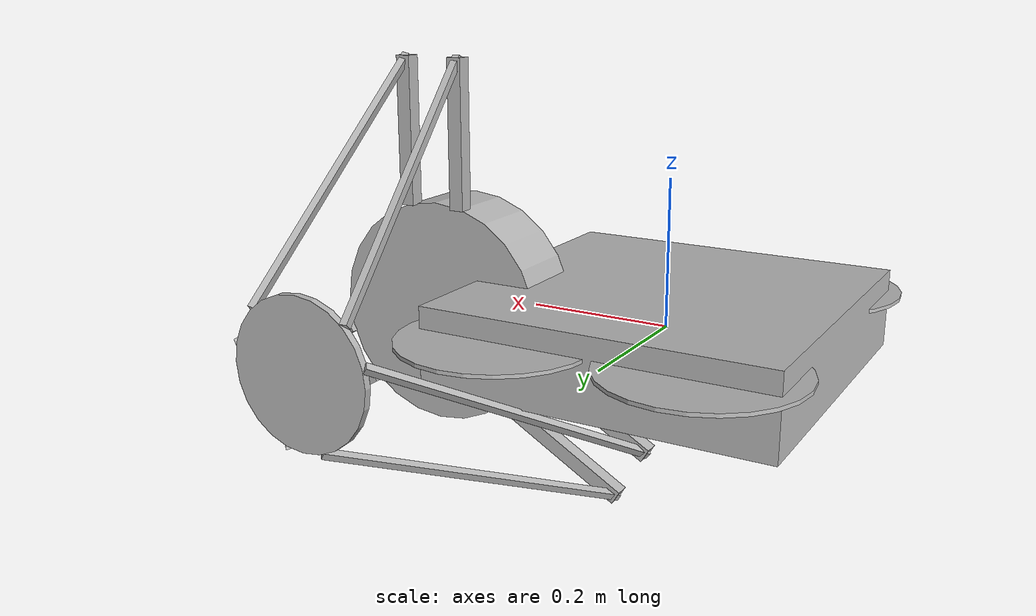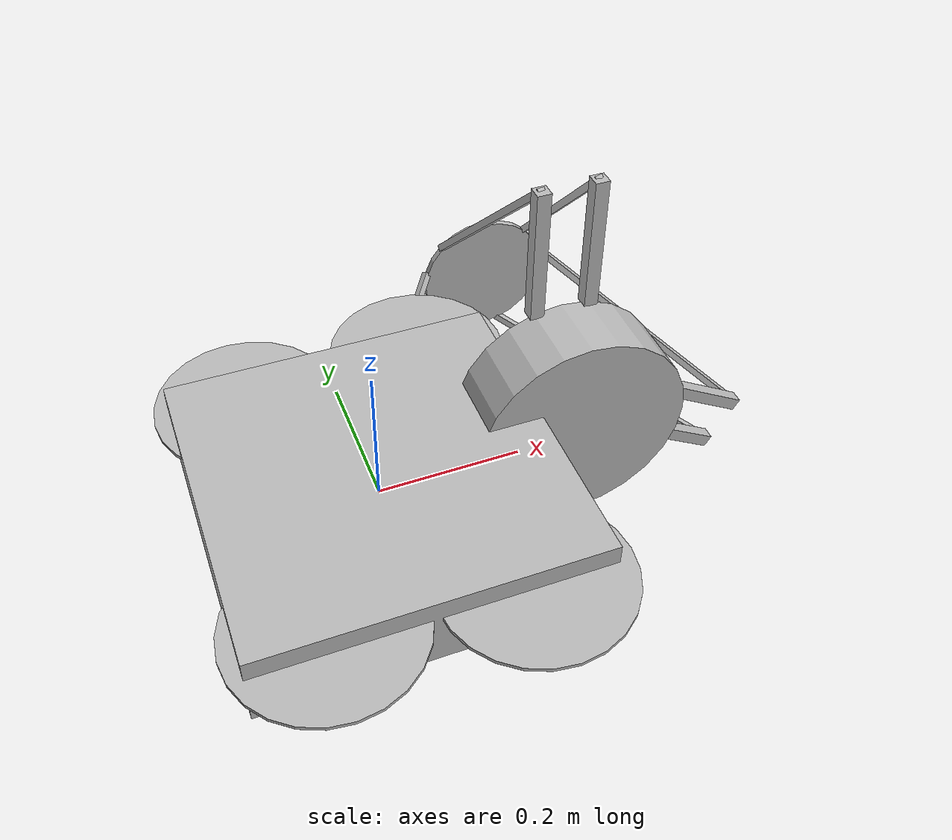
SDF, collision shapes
<?xml version="1.0" ?>
<sdf version="1.5">
  <model name='iris_stewart'>
    <include>
      <uri>model://iris</uri>
    </include>
    <include>
      <uri>model://stewart_platform</uri>
      <pose>0.3 0 0 -1.5708 0 0</pose>
    </include>
    <joint name="platform_joint" type="fixed">
      <child>stewart_platform::base_link</child>
      <parent>iris::base_link</parent>
    </joint>
  </model>
</sdf>

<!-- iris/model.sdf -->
<!-- DO NOT EDIT: Generated from iris.sdf.jinja -->
<sdf version='1.6'>
  <model name='iris'>
    <link name='base_link'>
      <pose>0 0 0 0 0 0</pose>
      <inertial>
        <pose>0 0 0 0 0 0</pose>
        <mass>1.5</mass>
        <inertia>
          <ixx>0.029125</ixx>
          <ixy>0</ixy>
          <ixz>0</ixz>
          <iyy>0.029125</iyy>
          <iyz>0</iyz>
          <izz>0.055225</izz>
        </inertia>
      </inertial>
      <collision name='base_link_inertia_collision'>
        <pose>0 0 0 0 0 0</pose>
        <geometry>
          <box>
            <size>0.47 0.47 0.11</size>
          </box>
        </geometry>
        <surface>
          <contact>
            <ode>
              <min_depth>0.001</min_depth>
              <max_vel>0</max_vel>
            </ode>
          </contact>
          <friction>
            <ode/>
          </friction>
        </surface>
      </collision>
      <visual name='base_link_inertia_visual'>
        <pose>0 0 0 0 0 0</pose>
        <geometry>
          <mesh>
            <scale>1 1 1</scale>
            <uri>model://iris/meshes/iris.stl</uri>
          </mesh>
        </geometry>
      </visual>
      <gravity>1</gravity>
      <velocity_decay/>
    </link>
    <link name='/imu_link'>
      <pose>0 0 0 0 0 0</pose>
      <inertial>
        <pose>0 0 0 0 0 0</pose>
        <mass>0.015</mass>
        <inertia>
          <ixx>1e-05</ixx>
          <ixy>0</ixy>
          <ixz>0</ixz>
          <iyy>1e-05</iyy>
          <iyz>0</iyz>
          <izz>1e-05</izz>
        </inertia>
      </inertial>
    </link>
    <joint name='/imu_joint' type='revolute'>
      <child>/imu_link</child>
      <parent>base_link</parent>
      <axis>
        <xyz>1 0 0</xyz>
        <limit>
          <lower>0</lower>
          <upper>0</upper>
          <effort>0</effort>
          <velocity>0</velocity>
        </limit>
        <dynamics>
          <spring_reference>0</spring_reference>
          <spring_stiffness>0</spring_stiffness>
        </dynamics>
        <use_parent_model_frame>1</use_parent_model_frame>
      </axis>
    </joint>
    <link name='rotor_0'>
      <pose>0.13 -0.22 0.023 0 0 0</pose>
      <inertial>
        <pose>0 0 0 0 0 0</pose>
        <mass>0.005</mass>
        <inertia>
          <ixx>9.75e-07</ixx>
          <ixy>0</ixy>
          <ixz>0</ixz>
          <iyy>0.000273104</iyy>
          <iyz>0</iyz>
          <izz>0.000274004</izz>
        </inertia>
      </inertial>
      <collision name='rotor_0_collision'>
        <pose>0 0 0 0 0 0</pose>
        <geometry>
          <cylinder>
            <length>0.005</length>
            <radius>0.128</radius>
          </cylinder>
        </geometry>
        <surface>
          <contact>
            <ode/>
          </contact>
          <friction>
            <ode/>
          </friction>
        </surface>
      </collision>
      <visual name='rotor_0_visual'>
        <pose>0 0 0 0 0 0</pose>
        <geometry>
          <mesh>
            <scale>1 1 1</scale>
            <uri>model://iris/meshes/iris_prop_ccw.dae</uri>
          </mesh>
        </geometry>
      </visual>
      <gravity>1</gravity>
      <velocity_decay/>
    </link>
    <joint name='rotor_0_joint' type='revolute'>
      <child>rotor_0</child>
      <parent>base_link</parent>
      <axis>
        <xyz>0 0 1</xyz>
        <limit>
          <lower>-1e+16</lower>
          <upper>1e+16</upper>
        </limit>
        <dynamics>
          <spring_reference>0</spring_reference>
          <spring_stiffness>0</spring_stiffness>
        </dynamics>
        <use_parent_model_frame>1</use_parent_model_frame>
      </axis>
    </joint>
    <link name='rotor_1'>
      <pose>-0.13 0.2 0.023 0 0 0</pose>
      <inertial>
        <pose>0 0 0 0 0 0</pose>
        <mass>0.005</mass>
        <inertia>
          <ixx>9.75e-07</ixx>
          <ixy>0</ixy>
          <ixz>0</ixz>
          <iyy>0.000273104</iyy>
          <iyz>0</iyz>
          <izz>0.000274004</izz>
        </inertia>
      </inertial>
      <collision name='rotor_1_collision'>
        <pose>0 0 0 0 0 0</pose>
        <geometry>
          <cylinder>
            <length>0.005</length>
            <radius>0.128</radius>
          </cylinder>
        </geometry>
        <surface>
          <contact>
            <ode/>
          </contact>
          <friction>
            <ode/>
          </friction>
        </surface>
      </collision>
      <visual name='rotor_1_visual'>
        <pose>0 0 0 0 0 0</pose>
        <geometry>
          <mesh>
            <scale>1 1 1</scale>
            <uri>model://iris/meshes/iris_prop_ccw.dae</uri>
          </mesh>
        </geometry>
      </visual>
      <gravity>1</gravity>
      <velocity_decay/>
    </link>
    <joint name='rotor_1_joint' type='revolute'>
      <child>rotor_1</child>
      <parent>base_link</parent>
      <axis>
        <xyz>0 0 1</xyz>
        <limit>
          <lower>-1e+16</lower>
          <upper>1e+16</upper>
        </limit>
        <dynamics>
          <spring_reference>0</spring_reference>
          <spring_stiffness>0</spring_stiffness>
        </dynamics>
        <use_parent_model_frame>1</use_parent_model_frame>
      </axis>
    </joint>
    <link name='rotor_2'>
      <pose>0.13 0.22 0.023 0 0 0</pose>
      <inertial>
        <pose>0 0 0 0 0 0</pose>
        <mass>0.005</mass>
        <inertia>
          <ixx>9.75e-07</ixx>
          <ixy>0</ixy>
          <ixz>0</ixz>
          <iyy>0.000273104</iyy>
          <iyz>0</iyz>
          <izz>0.000274004</izz>
        </inertia>
      </inertial>
      <collision name='rotor_2_collision'>
        <pose>0 0 0 0 0 0</pose>
        <geometry>
          <cylinder>
            <length>0.005</length>
            <radius>0.128</radius>
          </cylinder>
        </geometry>
        <surface>
          <contact>
            <ode/>
          </contact>
          <friction>
            <ode/>
          </friction>
        </surface>
      </collision>
      <visual name='rotor_2_visual'>
        <pose>0 0 0 0 0 0</pose>
        <geometry>
          <mesh>
            <scale>1 1 1</scale>
            <uri>model://iris/meshes/iris_prop_cw.dae</uri>
          </mesh>
        </geometry>
      </visual>
      <gravity>1</gravity>
      <velocity_decay/>
    </link>
    <joint name='rotor_2_joint' type='revolute'>
      <child>rotor_2</child>
      <parent>base_link</parent>
      <axis>
        <xyz>0 0 1</xyz>
        <limit>
          <lower>-1e+16</lower>
          <upper>1e+16</upper>
        </limit>
        <dynamics>
          <spring_reference>0</spring_reference>
          <spring_stiffness>0</spring_stiffness>
        </dynamics>
        <use_parent_model_frame>1</use_parent_model_frame>
      </axis>
    </joint>
    <link name='rotor_3'>
      <pose>-0.13 -0.2 0.023 0 0 0</pose>
      <inertial>
        <pose>0 0 0 0 0 0</pose>
        <mass>0.005</mass>
        <inertia>
          <ixx>9.75e-07</ixx>
          <ixy>0</ixy>
          <ixz>0</ixz>
          <iyy>0.000273104</iyy>
          <iyz>0</iyz>
          <izz>0.000274004</izz>
        </inertia>
      </inertial>
      <collision name='rotor_3_collision'>
        <pose>0 0 0 0 0 0</pose>
        <geometry>
          <cylinder>
            <length>0.005</length>
            <radius>0.128</radius>
          </cylinder>
        </geometry>
        <surface>
          <contact>
            <ode/>
          </contact>
          <friction>
            <ode/>
          </friction>
        </surface>
      </collision>
      <visual name='rotor_3_visual'>
        <pose>0 0 0 0 0 0</pose>
        <geometry>
          <mesh>
            <scale>1 1 1</scale>
            <uri>model://iris/meshes/iris_prop_cw.dae</uri>
          </mesh>
        </geometry>
      </visual>
      <gravity>1</gravity>
      <velocity_decay/>
    </link>
    <joint name='rotor_3_joint' type='revolute'>
      <child>rotor_3</child>
      <parent>base_link</parent>
      <axis>
        <xyz>0 0 1</xyz>
        <limit>
          <lower>-1e+16</lower>
          <upper>1e+16</upper>
        </limit>
        <dynamics>
          <spring_reference>0</spring_reference>
          <spring_stiffness>0</spring_stiffness>
        </dynamics>
        <use_parent_model_frame>1</use_parent_model_frame>
      </axis>
    </joint>
    <plugin name='rosbag' filename='libgazebo_multirotor_base_plugin.so'>
      <robotNamespace/>
      <linkName>base_link</linkName>
      <rotorVelocitySlowdownSim>10</rotorVelocitySlowdownSim>
    </plugin>
    <plugin name='front_right_motor_model' filename='libgazebo_motor_model.so'>
      <robotNamespace/>
      <jointName>rotor_0_joint</jointName>
      <linkName>rotor_0</linkName>
      <turningDirection>ccw</turningDirection>
      <timeConstantUp>0.0125</timeConstantUp>
      <timeConstantDown>0.025</timeConstantDown>
      <maxRotVelocity>1100</maxRotVelocity>
      <motorConstant>5.84e-06</motorConstant>
      <momentConstant>0.06</momentConstant>
      <commandSubTopic>/gazebo/command/motor_speed</commandSubTopic>
      <motorNumber>0</motorNumber>
      <rotorDragCoefficient>0.000175</rotorDragCoefficient>
      <rollingMomentCoefficient>1e-06</rollingMomentCoefficient>
      <motorSpeedPubTopic>/motor_speed/0</motorSpeedPubTopic>
      <rotorVelocitySlowdownSim>10</rotorVelocitySlowdownSim>
    </plugin>
    <plugin name='back_left_motor_model' filename='libgazebo_motor_model.so'>
      <robotNamespace/>
      <jointName>rotor_1_joint</jointName>
      <linkName>rotor_1</linkName>
      <turningDirection>ccw</turningDirection>
      <timeConstantUp>0.0125</timeConstantUp>
      <timeConstantDown>0.025</timeConstantDown>
      <maxRotVelocity>1100</maxRotVelocity>
      <motorConstant>5.84e-06</motorConstant>
      <momentConstant>0.06</momentConstant>
      <commandSubTopic>/gazebo/command/motor_speed</commandSubTopic>
      <motorNumber>1</motorNumber>
      <rotorDragCoefficient>0.000175</rotorDragCoefficient>
      <rollingMomentCoefficient>1e-06</rollingMomentCoefficient>
      <motorSpeedPubTopic>/motor_speed/1</motorSpeedPubTopic>
      <rotorVelocitySlowdownSim>10</rotorVelocitySlowdownSim>
    </plugin>
    <plugin name='front_left_motor_model' filename='libgazebo_motor_model.so'>
      <robotNamespace/>
      <jointName>rotor_2_joint</jointName>
      <linkName>rotor_2</linkName>
      <turningDirection>cw</turningDirection>
      <timeConstantUp>0.0125</timeConstantUp>
      <timeConstantDown>0.025</timeConstantDown>
      <maxRotVelocity>1100</maxRotVelocity>
      <motorConstant>5.84e-06</motorConstant>
      <momentConstant>0.06</momentConstant>
      <commandSubTopic>/gazebo/command/motor_speed</commandSubTopic>
      <motorNumber>2</motorNumber>
      <rotorDragCoefficient>0.000175</rotorDragCoefficient>
      <rollingMomentCoefficient>1e-06</rollingMomentCoefficient>
      <motorSpeedPubTopic>/motor_speed/2</motorSpeedPubTopic>
      <rotorVelocitySlowdownSim>10</rotorVelocitySlowdownSim>
    </plugin>
    <plugin name='back_right_motor_model' filename='libgazebo_motor_model.so'>
      <robotNamespace/>
      <jointName>rotor_3_joint</jointName>
      <linkName>rotor_3</linkName>
      <turningDirection>cw</turningDirection>
      <timeConstantUp>0.0125</timeConstantUp>
      <timeConstantDown>0.025</timeConstantDown>
      <maxRotVelocity>1100</maxRotVelocity>
      <motorConstant>5.84e-06</motorConstant>
      <momentConstant>0.06</momentConstant>
      <commandSubTopic>/gazebo/command/motor_speed</commandSubTopic>
      <motorNumber>3</motorNumber>
      <rotorDragCoefficient>0.000175</rotorDragCoefficient>
      <rollingMomentCoefficient>1e-06</rollingMomentCoefficient>
      <motorSpeedPubTopic>/motor_speed/3</motorSpeedPubTopic>
      <rotorVelocitySlowdownSim>10</rotorVelocitySlowdownSim>
    </plugin>
    <model name='gps0'>
      <link name='link'>
        <pose>0 0 0 0 0 0</pose>
        <inertial>
          <pose>0 0 0 0 0 0</pose>
          <mass>0.01</mass>
          <inertia>
            <ixx>2.1733e-06</ixx>
            <ixy>0</ixy>
            <ixz>0</ixz>
            <iyy>2.1733e-06</iyy>
            <iyz>0</iyz>
            <izz>1.8e-07</izz>
          </inertia>
        </inertial>
        <visual name='visual'>
          <geometry>
            <cylinder>
              <radius>0.01</radius>
              <length>0.002</length>
            </cylinder>
          </geometry>
        </visual>
        <sensor name='gps' type='gps'>
          <pose>0 0 0 0 0 0</pose>
          <plugin name='gps_plugin' filename='libgazebo_gps_plugin.so'>
            <robotNamespace/>
            <gpsNoise>1</gpsNoise>
            <gpsXYRandomWalk>2.0</gpsXYRandomWalk>
            <gpsZRandomWalk>4.0</gpsZRandomWalk>
            <gpsXYNoiseDensity>0.0002</gpsXYNoiseDensity>
            <gpsZNoiseDensity>0.0004</gpsZNoiseDensity>
            <gpsVXYNoiseDensity>0.2</gpsVXYNoiseDensity>
            <gpsVZNoiseDensity>0.4</gpsVZNoiseDensity>
          </plugin>
        </sensor>
      </link>
    </model>
    <joint name='gps0_joint' type='fixed'>
      <parent>base_link</parent>
      <child>gps0::link</child>
    </joint>
    <plugin name='groundtruth_plugin' filename='libgazebo_groundtruth_plugin.so'>
      <robotNamespace/>
    </plugin>
    <plugin name='magnetometer_plugin' filename='libgazebo_magnetometer_plugin.so'>
      <robotNamespace/>
      <pubRate>100</pubRate>
      <noiseDensity>0.0004</noiseDensity>
      <randomWalk>6.4e-06</randomWalk>
      <biasCorrelationTime>600</biasCorrelationTime>
      <magTopic>/mag</magTopic>
    </plugin>
    <plugin name='barometer_plugin' filename='libgazebo_barometer_plugin.so'>
      <robotNamespace/>
      <pubRate>50</pubRate>
      <baroTopic>/baro</baroTopic>
      <baroDriftPaPerSec>0</baroDriftPaPerSec>
    </plugin>
    <plugin name='mavlink_interface' filename='libgazebo_mavlink_interface.so'>
      <robotNamespace/>
      <imuSubTopic>/imu</imuSubTopic>
      <magSubTopic>/mag</magSubTopic>
      <baroSubTopic>/baro</baroSubTopic>
      <mavlink_addr>INADDR_ANY</mavlink_addr>
      <mavlink_tcp_port>{{ mavlink_tcp_port }}</mavlink_tcp_port>
      <mavlink_udp_port>{{ mavlink_udp_port }}</mavlink_udp_port>
      <serialEnabled>{{ serial_enabled }}</serialEnabled>
      <serialDevice>{{ serial_device }}</serialDevice>
      <baudRate>{{ serial_baudrate }}</baudRate>
      <qgc_addr>INADDR_ANY</qgc_addr>
      <qgc_udp_port>14550</qgc_udp_port>
      <sdk_addr>INADDR_ANY</sdk_addr>
      <sdk_udp_port>14540</sdk_udp_port>
      <hil_mode>{{ hil_mode }}</hil_mode>
      <hil_state_level>0</hil_state_level>
      <send_vision_estimation>0</send_vision_estimation>
      <send_odometry>1</send_odometry>
      <enable_lockstep>1</enable_lockstep>
      <use_tcp>1</use_tcp>
      <motorSpeedCommandPubTopic>/gazebo/command/motor_speed</motorSpeedCommandPubTopic>
      <control_channels>
        <channel name='rotor1'>
          <input_index>0</input_index>
          <input_offset>0</input_offset>
          <input_scaling>1000</input_scaling>
          <zero_position_disarmed>0</zero_position_disarmed>
          <zero_position_armed>100</zero_position_armed>
          <joint_control_type>velocity</joint_control_type>
        </channel>
        <channel name='rotor2'>
          <input_index>1</input_index>
          <input_offset>0</input_offset>
          <input_scaling>1000</input_scaling>
          <zero_position_disarmed>0</zero_position_disarmed>
          <zero_position_armed>100</zero_position_armed>
          <joint_control_type>velocity</joint_control_type>
        </channel>
        <channel name='rotor3'>
          <input_index>2</input_index>
          <input_offset>0</input_offset>
          <input_scaling>1000</input_scaling>
          <zero_position_disarmed>0</zero_position_disarmed>
          <zero_position_armed>100</zero_position_armed>
          <joint_control_type>velocity</joint_control_type>
        </channel>
        <channel name='rotor4'>
          <input_index>3</input_index>
          <input_offset>0</input_offset>
          <input_scaling>1000</input_scaling>
          <zero_position_disarmed>0</zero_position_disarmed>
          <zero_position_armed>100</zero_position_armed>
          <joint_control_type>velocity</joint_control_type>
        </channel>
        <channel name='rotor5'>
          <input_index>4</input_index>
          <input_offset>1</input_offset>
          <input_scaling>324.6</input_scaling>
          <zero_position_disarmed>0</zero_position_disarmed>
          <zero_position_armed>0</zero_position_armed>
          <joint_control_type>velocity</joint_control_type>
          <joint_control_pid>
            <p>0.1</p>
            <i>0</i>
            <d>0</d>
            <iMax>0.0</iMax>
            <iMin>0.0</iMin>
            <cmdMax>2</cmdMax>
            <cmdMin>-2</cmdMin>
          </joint_control_pid>
          <joint_name>zephyr_delta_wing::propeller_joint</joint_name>
        </channel>
        <channel name='rotor6'>
          <input_index>5</input_index>
          <input_offset>0</input_offset>
          <input_scaling>0.524</input_scaling>
          <zero_position_disarmed>0</zero_position_disarmed>
          <zero_position_armed>0</zero_position_armed>
          <joint_control_type>position</joint_control_type>
          <joint_name>zephyr_delta_wing::flap_left_joint</joint_name>
          <joint_control_pid>
            <p>10.0</p>
            <i>0</i>
            <d>0</d>
            <iMax>0</iMax>
            <iMin>0</iMin>
            <cmdMax>20</cmdMax>
            <cmdMin>-20</cmdMin>
          </joint_control_pid>
        </channel>
        <channel name='rotor7'>
          <input_index>6</input_index>
          <input_offset>0</input_offset>
          <input_scaling>0.524</input_scaling>
          <zero_position_disarmed>0</zero_position_disarmed>
          <zero_position_armed>0</zero_position_armed>
          <joint_control_type>position</joint_control_type>
          <joint_name>zephyr_delta_wing::flap_right_joint</joint_name>
          <joint_control_pid>
            <p>10.0</p>
            <i>0</i>
            <d>0</d>
            <iMax>0</iMax>
            <iMin>0</iMin>
            <cmdMax>20</cmdMax>
            <cmdMin>-20</cmdMin>
          </joint_control_pid>
        </channel>
        <channel name='rotor8'>
          <input_index>7</input_index>
          <input_offset>0</input_offset>
          <input_scaling>0.524</input_scaling>
          <zero_position_disarmed>0</zero_position_disarmed>
          <zero_position_armed>0</zero_position_armed>
          <joint_control_type>position</joint_control_type>
        </channel>
      </control_channels>
    </plugin>
    <static>0</static>
    <plugin name='rotors_gazebo_imu_plugin' filename='libgazebo_imu_plugin.so'>
      <robotNamespace/>
      <linkName>/imu_link</linkName>
      <imuTopic>/imu</imuTopic>
      <gyroscopeNoiseDensity>0.00018665</gyroscopeNoiseDensity>
      <gyroscopeRandomWalk>3.8785e-05</gyroscopeRandomWalk>
      <gyroscopeBiasCorrelationTime>1000.0</gyroscopeBiasCorrelationTime>
      <gyroscopeTurnOnBiasSigma>0.0087</gyroscopeTurnOnBiasSigma>
      <accelerometerNoiseDensity>0.00186</accelerometerNoiseDensity>
      <accelerometerRandomWalk>0.006</accelerometerRandomWalk>
      <accelerometerBiasCorrelationTime>300.0</accelerometerBiasCorrelationTime>
      <accelerometerTurnOnBiasSigma>0.196</accelerometerTurnOnBiasSigma>
    </plugin>
  </model>
</sdf>

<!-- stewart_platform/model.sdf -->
<sdf version="1.4">
<model name="stewart_platform">

  <plugin name="joint_controller" filename="libjoint_controller.so"/>

  <joint name="proximal_link_1_joint" type="revolute">
		<parent>base_link</parent>
		<child>proximal_link_1</child>
		<pose>-0.1 0 0 0 0 0</pose>
		<axis>
			<xyz>0.5000001943375613 -0.8660252915835662 0</xyz>
      <limit>
				<lower> -0.785398 </lower>
				<upper> 1.57079 </upper>
				<velocity> 1 </velocity>
			</limit>
		</axis>
	</joint>

  <joint name="proximal_link_2_joint" type="revolute">
		<parent>base_link</parent>
		<child>proximal_link_2</child>
		<pose>-0.1 0 0 0 0 0</pose>
		<axis>
			<xyz>0.5000001943375613 -0.8660252915835662 0</xyz>
      <limit>
				<lower> -0.785398 </lower>
				<upper> 1.57079 </upper>
				<velocity> 1 </velocity>
			</limit>
		</axis>
	</joint>

	<joint name="proximal_link_3_joint" type="revolute">
		<parent>base_link</parent>
		<child>proximal_link_3</child>
		<pose>-0.1 0 0 0 0 0</pose>
		<axis>
			<xyz>0.5000001943375613 0.8660252915835662 0</xyz>
      <limit>
				<lower> -0.785398 </lower>
				<upper> 1.57079 </upper>
				<velocity> 1 </velocity>
			</limit>
		</axis>
	</joint>

  <joint name="proximal_link_4_joint" type="revolute">
		<parent>base_link</parent>
		<child>proximal_link_4</child>
		<pose>-0.1 0 0 0 0 0</pose>
		<axis>
			<xyz>0.5000001943375613 0.8660252915835662 0</xyz>
      <limit>
				<lower> -0.785398 </lower>
				<upper> 1.57079 </upper>
				<velocity> 1 </velocity>
			</limit>
		</axis>
	</joint>

	<joint name="proximal_link_5_joint" type="revolute">
		<parent>base_link</parent>
		<child>proximal_link_5</child>
		<pose>-0.1 0 0 0 0 0</pose>
		<axis>
			<xyz>-1 0 0</xyz>
      <limit>
				<lower> -0.785398 </lower>
				<upper> 1.57079 </upper>
				<velocity> 1 </velocity>
			</limit>
		</axis>
	</joint>

  <joint name="proximal_link_6_joint" type="revolute">
		<parent>base_link</parent>
		<child>proximal_link_6</child>
		<pose>-0.1 0 0 0 0 0</pose>
		<axis>
			<xyz>-1 0 0</xyz>
      <limit>
				<lower> -0.785398 </lower>
				<upper> 1.57079 </upper>
				<velocity> 1 </velocity>
			</limit>
		</axis>
	</joint>

  <joint name="distal_link_1_joint" type="ball">
		<parent>proximal_link_1</parent>
		<child>distal_link_1</child>
		<pose> 0.2 0 0 0 0 0</pose>
		<axis>
			<xyz>1 0 0</xyz>
		</axis>
	</joint>

  <joint name="distal_link_2_joint" type="ball">
		<parent>proximal_link_2</parent>
		<child>distal_link_2</child>
		<pose> 0.2 0 0 0 0 0</pose>
		<axis>
			<xyz>1 0 0</xyz>
		</axis>
	</joint>

  <joint name="distal_link_3_joint" type="ball">
		<parent>proximal_link_3</parent>
		<child>distal_link_3</child>
		<pose> 0.2 0 0 0 0 0</pose>
		<axis>
			<xyz>1 0 0</xyz>
		</axis>
	</joint>

  <joint name="distal_link_4_joint" type="ball">
		<parent>proximal_link_4</parent>
		<child>distal_link_4</child>
		<pose> 0.2 0 0 0 0 0</pose>
		<axis>
			<xyz>1 0 0</xyz>
		</axis>
	</joint>

  <joint name="distal_link_5_joint" type="ball">
		<parent>proximal_link_5</parent>
		<child>distal_link_5</child>
		<pose> 0.2 0 0 0 0 0</pose>
		<axis>
			<xyz>1 0 0</xyz>
		</axis>
	</joint>

  <joint name="distal_link_6_joint" type="ball">
		<parent>proximal_link_6</parent>
		<child>distal_link_6</child>
		<pose> 0.2 0 0 0 0 0</pose>
		<axis>
			<xyz>1 0 0</xyz>
		</axis>
	</joint>

  <joint name="platform_link_1_joint" type="ball">
		<parent>distal_link_1</parent>
		<child>platform_link</child>
		<pose>0.09562178401447893 -0.025621756807220356 0 0 0 0</pose>
	</joint>

  <joint name="platform_link_2_joint" type="ball">
		<parent>distal_link_2</parent>
		<child>platform_link</child>
		<pose>0.025621756807220356 0.09562178401447893 0 0 0 0</pose>
	</joint>

  <joint name="platform_link_3_joint" type="ball">
		<parent>distal_link_3</parent>
		<child>platform_link</child>
		<pose>-0.025621756807220356 0.09562178401447893 0 0 0 0</pose>
	</joint>

  <joint name="platform_link_4_joint" type="ball">
		<parent>distal_link_4</parent>
		<child>platform_link</child>
		<pose>-0.09562178401447893 -0.025621756807220356 0 0 0 0</pose>
	</joint>

  <joint name="platform_link_5_joint" type="ball">
		<parent>distal_link_5</parent>
		<child>platform_link</child>
		<pose>-0.07 -0.07 0 0 0 0</pose>
	</joint>

  <joint name="platform_link_6_joint" type="ball">
		<parent>distal_link_6</parent>
		<child>platform_link</child>
		<pose>0.07 -0.07 0 0 0 0</pose>
	</joint>

  <link name="base_link">
    <pose>0 0 0.05 0 0 0</pose>
    <inertial>
    <mass>0.1</mass>
    <inertia>
      <ixx>0.0005625</ixx>
      <ixy>0.0</ixy>
      <ixz>0.0</ixz>
      <iyy>0.0005625</iyy>
      <iyz>0.0</iyz>
      <izz>0.001125</izz>
    </inertia>
    </inertial>
    <collision name="collision">
      <geometry>
        <cylinder>
          <radius>0.15524174696260024</radius>
          <length>0.1</length>
        </cylinder>
      </geometry>
    </collision>
    <visual name="visual">
      <geometry>
        <cylinder>
          <radius>0.15524174696260024</radius>
          <length>0.1</length>
        </cylinder>
      </geometry>
    </visual>
  </link>

  <link name="proximal_link_1">
    <pose>0.23650633066939403 0.09035903692104766 0.1 0 0 0.523599</pose>
    <inertial>
      <mass>0.002</mass>
      <inertia>
        <ixx>1.0000000000000001e-07</ixx>
        <ixy>0.0</ixy>
        <ixz>0.0</ixz>
        <iyy>6.716398000000002e-05</iyy>
        <iyz>0.0</iyz>
        <izz>6.716398000000002e-05</izz>
      </inertia>
    </inertial>
    <collision name="collision">
      <geometry>
        <box>
          <size>0.2 0.02 0.02</size>
        </box>
      </geometry>
    </collision>
    <visual name="visual">
      <geometry>
        <box>
          <size>0.2 0.02 0.02</size>
        </box>
      </geometry>
    </visual>
  </link>

  <link name="proximal_link_2">
    <pose>0.19650631512238914 0.15964106024773295 0.1 0 0 0.523599</pose>
    <inertial>
    <mass>0.002</mass>
    <inertia>
      <ixx>1.0000000000000001e-07</ixx>
      <ixy>0.0</ixy>
      <ixz>0.0</ixz>
      <iyy>6.716398000000002e-05</iyy>
      <iyz>0.0</iyz>
      <izz>6.716398000000002e-05</izz>
    </inertia>
    </inertial>
    <collision name="collision">
      <geometry>
        <box>
          <size>0.2 0.02 0.02</size>
        </box>
      </geometry>
    </collision>
    <visual name = "visual">
      <geometry>
        <box>
          <size>0.2 0.02 0.02</size>
        </box>
      </geometry>
    </visual>
  </link>

  <link name="proximal_link_3">
    <pose>-0.19650631512238914 0.15964106024773295 0.1 0 0 2.61799</pose>
    <inertial>
    <mass>0.002</mass>
    <inertia>
      <ixx>1.0000000000000001e-07</ixx>
      <ixy>0.0</ixy>
      <ixz>0.0</ixz>
      <iyy>6.716398000000002e-05</iyy>
      <iyz>0.0</iyz>
      <izz>6.716398000000002e-05</izz>
    </inertia>
    </inertial>
    <collision name="collision">
      <geometry>
        <box>
          <size>0.2 0.02 0.02</size>
        </box>
      </geometry>
    </collision>
    <visual name = "visual">
      <geometry>
        <box>
          <size>0.2 0.02 0.02</size>
        </box>
      </geometry>
    </visual>
  </link>

  <link name="proximal_link_4">
    <pose>-0.23650633066939403 0.09035903692104766 0.1 0 0 2.61799</pose>
    <inertial>
    <mass>0.002</mass>
    <inertia>
      <ixx>1.0000000000000001e-07</ixx>
      <ixy>0.0</ixy>
      <ixz>0.0</ixz>
      <iyy>6.716398000000002e-05</iyy>
      <iyz>0.0</iyz>
      <izz>6.716398000000002e-05</izz>
    </inertia>
    </inertial>
    <collision name="collision">
      <geometry>
        <box>
          <size>0.2 0.02 0.02</size>
        </box>
      </geometry>
    </collision>
    <visual name = "visual">
      <geometry>
        <box>
          <size>0.2 0.02 0.02</size>
        </box>
      </geometry>
    </visual>
  </link>

  <link name="proximal_link_5">
    <pose>-0.04 -0.25 0.1 0 0 4.71239</pose>
    <inertial>
    <mass>0.002</mass>
    <inertia>
      <ixx>1.0000000000000001e-07</ixx>
      <ixy>0.0</ixy>
      <ixz>0.0</ixz>
      <iyy>6.716398000000002e-05</iyy>
      <iyz>0.0</iyz>
      <izz>6.716398000000002e-05</izz>
    </inertia>
    </inertial>
    <collision name="collision">
      <geometry>
        <box>
          <size>0.2 0.02 0.02</size>
        </box>
      </geometry>
    </collision>
    <visual name = "visual">
      <geometry>
        <box>
          <size>0.2 0.02 0.02</size>
        </box>
      </geometry>
    </visual>
  </link>

  <link name="proximal_link_6">
    <pose>0.04 -0.25 0.1 0 0 4.71239</pose>
    <inertial>
    <mass>0.002</mass>
    <inertia>
      <ixx>1.0000000000000001e-07</ixx>
      <ixy>0.0</ixy>
      <ixz>0.0</ixz>
      <iyy>6.716398000000002e-05</iyy>
      <iyz>0.0</iyz>
      <izz>6.716398000000002e-05</izz>
    </inertia>
    </inertial>
    <collision name="collision">
      <geometry>
        <box>
          <size>0.2 0.02 0.02</size>
        </box>
      </geometry>
    </collision>
    <visual name = "visual">
      <geometry>
        <box>
          <size>0.2 0.02 0.02</size>
        </box>
      </geometry>
    </visual>
  </link>

  <link name="distal_link_1">
    <pose>0.2093653219211148 0.05736864977379172 0.24203872711341792 -1.4655813026652293 0.7926265735749716 0.6303346726491357</pose>
    <inertial>
    <mass>0.001</mass>
    <inertia>
      <ixx>1.2500000000000001e-08</ixx>
      <ixy>0.0</ixy>
      <ixz>0.0</ixz>
      <iyy>0.0001333904975</iyy>
      <iyz>0.0</iyz>
      <izz>0.0001333904975</izz>
    </inertia>
    </inertial>
    <collision name="collision">
      <geometry>
        <box>
          <size>0.4 0.01 0.01</size>
        </box>
      </geometry>
    </collision>
    <visual name = "visual">
      <geometry>
        <box>
          <size>0.4 0.01 0.01</size>
        </box>
      </geometry>
    </visual>
  </link>

  <link name="distal_link_2">
    <pose>0.15436530054398306 0.152631431847984 0.24203872711341792  -1.4655813026652293 0.7926265735749716 0.4168633273508644</pose>
    <inertial>
    <mass>0.001</mass>
    <inertia>
      <ixx>1.2500000000000001e-08</ixx>
      <ixy>0.0</ixy>
      <ixz>0.0</ixz>
      <iyy>0.0001333904975</iyy>
      <iyz>0.0</iyz>
      <izz>0.0001333904975</izz>
    </inertia>
    </inertial>
    <collision name="collision">
      <geometry>
        <box>
          <size>0.4 0.01 0.01</size>
        </box>
      </geometry>
    </collision>
    <visual name = "visual">
      <geometry>
        <box>
          <size>0.4 0.01 0.01</size>
        </box>
      </geometry>
    </visual>
  </link>

  <link name="distal_link_3">
    <pose>-0.15436530054398306 0.152631431847984 0.24203872711341792  -1.4655813026652293 0.7926265735749716 2.7247256726491353</pose>
    <inertial>
    <mass>0.001</mass>
    <inertia>
      <ixx>1.2500000000000001e-08</ixx>
      <ixy>0.0</ixy>
      <ixz>0.0</ixz>
      <iyy>0.0001333904975</iyy>
      <iyz>0.0</iyz>
      <izz>0.0001333904975</izz>
    </inertia>
    </inertial>
    <collision name="collision">
      <geometry>
        <box>
          <size>0.4 0.01 0.01</size>
        </box>
      </geometry>
    </collision>
    <visual name = "visual">
      <geometry>
        <box>
          <size>0.4 0.01 0.01</size>
        </box>
      </geometry>
    </visual>
  </link>

  <link name="distal_link_4">
    <pose>-0.2093653219211148 0.05736864977379172 0.24203872711341792  -1.4655813026652293 0.7926265735749716 2.5112543273508643</pose>
    <inertial>
    <mass>0.001</mass>
    <inertia>
      <ixx>1.2500000000000001e-08</ixx>
      <ixy>0.0</ixy>
      <ixz>0.0</ixz>
      <iyy>0.0001333904975</iyy>
      <iyz>0.0</iyz>
      <izz>0.0001333904975</izz>
    </inertia>
    </inertial>
    <collision name="collision">
      <geometry>
        <box>
          <size>0.4 0.01 0.01</size>
        </box>
      </geometry>
    </collision>
    <visual name = "visual">
      <geometry>
        <box>
          <size>0.4 0.01 0.01</size>
        </box>
      </geometry>
    </visual>
  </link>

  <link name="distal_link_5">
    <pose>-0.05500000000000001 -0.21 0.24203872711341792  -1.4655813026652293 0.7926265735749716 4.819125672649136</pose>
    <inertial>
    <mass>0.001</mass>
    <inertia>
      <ixx>1.2500000000000001e-08</ixx>
      <ixy>0.0</ixy>
      <ixz>0.0</ixz>
      <iyy>0.0001333904975</iyy>
      <iyz>0.0</iyz>
      <izz>0.0001333904975</izz>
    </inertia>
    </inertial>
    <collision name="collision">
      <geometry>
        <box>
          <size>0.4 0.01 0.01</size>
        </box>
      </geometry>
    </collision>
    <visual name = "visual">
      <geometry>
        <box>
          <size>0.4 0.01 0.01</size>
        </box>
      </geometry>
    </visual>
  </link>

  <link name="distal_link_6">
    <pose>0.05500000000000001 -0.21 0.24203872711341792  -1.4655813026652293 0.7926265735749716 4.605654327350864</pose>
    <inertial>
    <mass>0.001</mass>
    <inertia>
      <ixx>1.2500000000000001e-08</ixx>
      <ixy>0.0</ixy>
      <ixz>0.0</ixz>
      <iyy>0.0001333904975</iyy>
      <iyz>0.0</iyz>
      <izz>0.0001333904975</izz>
    </inertia>
    </inertial>
    <collision name="collision">
      <geometry>
        <box>
          <size>0.4 0.01 0.01</size>
        </box>
      </geometry>
    </collision>
    <visual name = "visual">
      <geometry>
        <box>
          <size>0.4 0.01 0.01</size>
        </box>
      </geometry>
    </visual>
  </link>

  <link name="platform_link">
    <pose>0 0 0.3840774542268358 0 0 0</pose>
    <inertial>
    <mass>0.001</mass>
    <inertia>
      <ixx>0.0005625</ixx>
      <ixy>0.0</ixy>
      <ixz>0.0</ixz>
      <iyy>0.0005625</iyy>
      <iyz>0.0</iyz>
      <izz>0.001125</izz>
    </inertia>
    </inertial>
    <collision name="collision">
      <geometry>
        <cylinder>
          <radius>0.09899494936611666</radius>
          <length>0.01</length>
        </cylinder>
      </geometry>
    </collision>
    <visual name = "visual">
      <geometry>
        <cylinder>
          <radius>0.09899494936611666</radius>
          <length>0.01</length>
        </cylinder>
      </geometry>
    </visual>
  </link>
</model>
</sdf>
